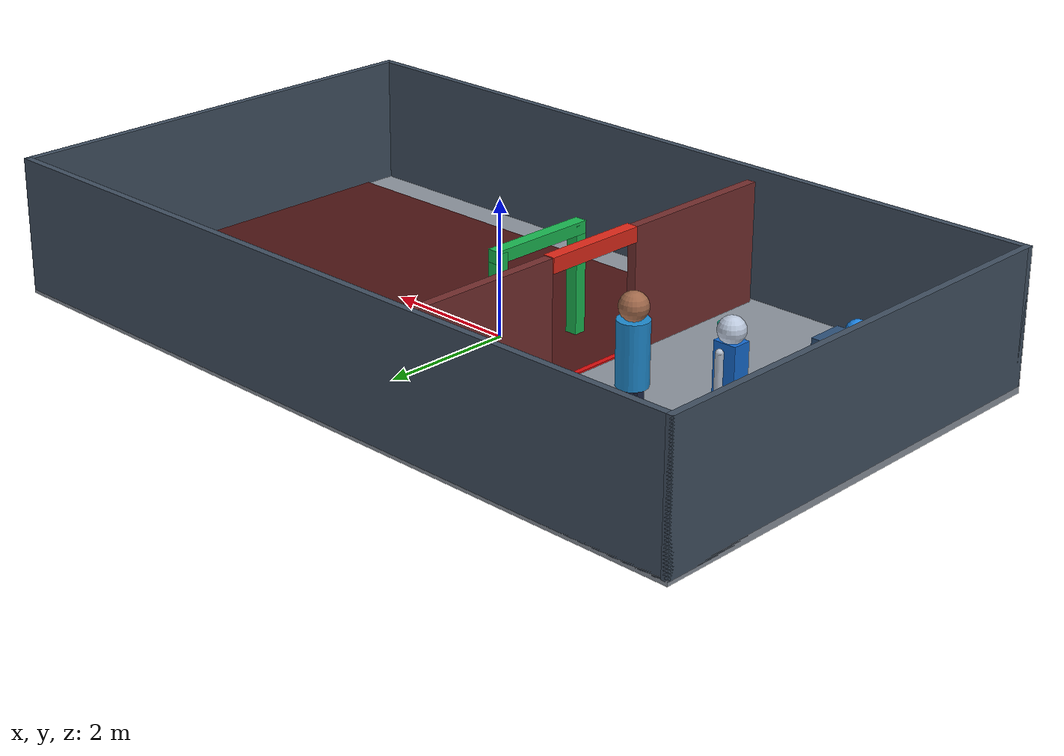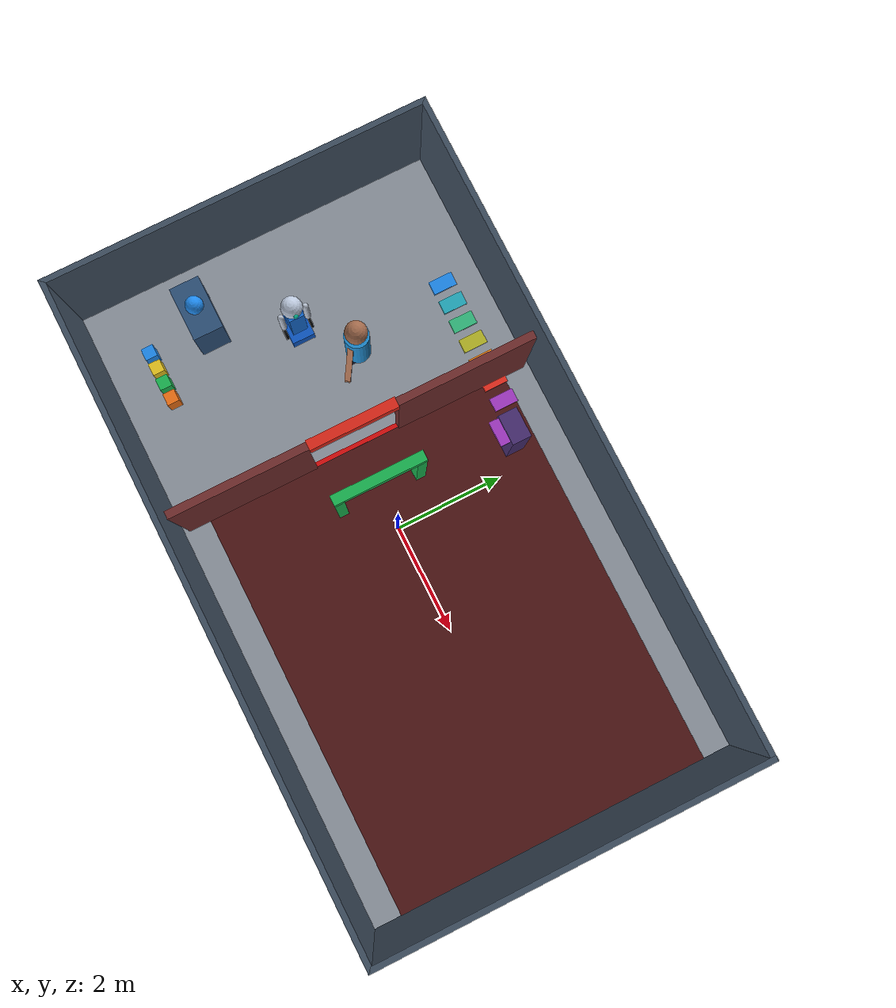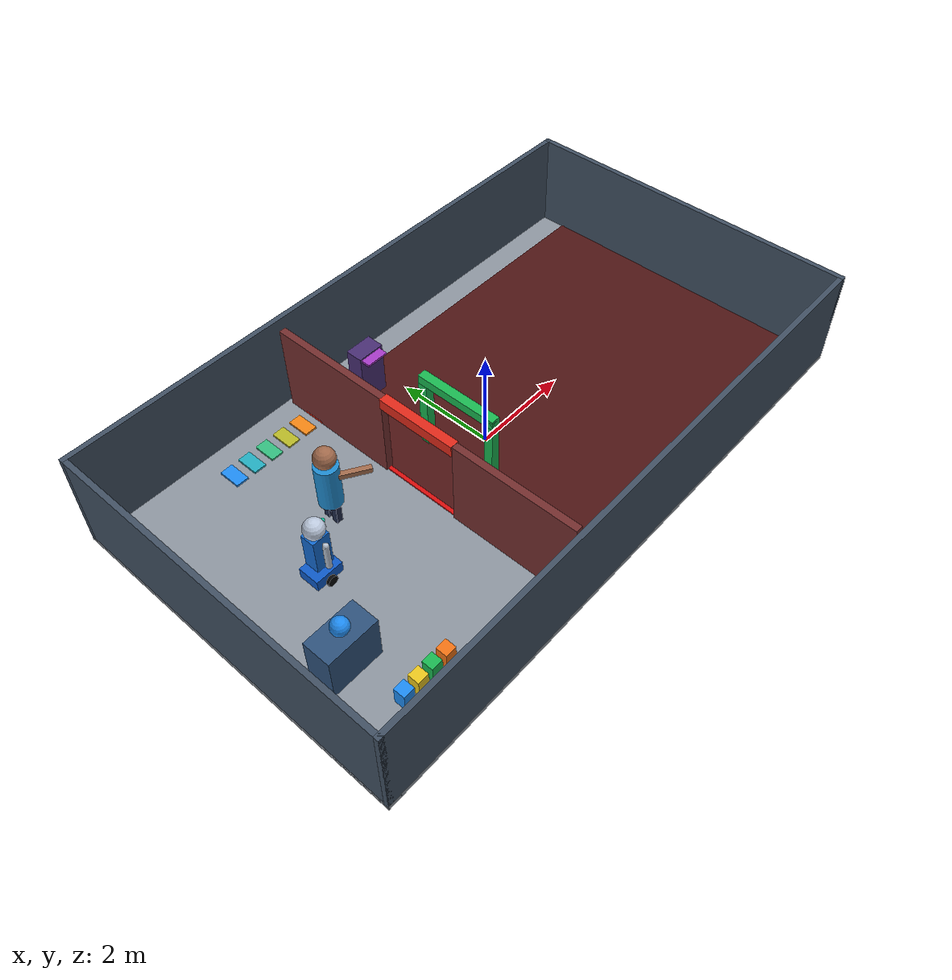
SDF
<?xml version="1.0"?>
<sdf version="1.9">
  <world name="dynamic_consent_world">
    <plugin filename="gz-sim-physics-system" name="gz::sim::systems::Physics"/>
    <plugin filename="gz-sim-user-commands-system" name="gz::sim::systems::UserCommands"/>
    <plugin filename="gz-sim-scene-broadcaster-system" name="gz::sim::systems::SceneBroadcaster"/>
    <!-- A logical camera avoids GPU rendering in OpenGL-limited UTM guests. -->
    <plugin filename="gz-sim-logical-camera-system" name="gz::sim::systems::LogicalCamera"/>

    <gui fullscreen="0">
      <plugin filename="MinimalScene" name="Assistance study view">
        <gz-gui>
          <title>Assistance study view</title>
          <property type="bool" key="showTitleBar">false</property>
          <property type="string" key="state">docked</property>
        </gz-gui>
        <scene>scene</scene>
        <ambient_light>0.7 0.7 0.7</ambient_light>
        <background_color>0.12 0.15 0.20</background_color>
        <camera_pose>-6.5 -6.5 6.5 0 0.55 0.78</camera_pose>
        <camera_clip><near>0.1</near><far>100</far></camera_clip>
      </plugin>
      <plugin filename="GzSceneManager" name="Scene Manager"/>
      <plugin filename="WorldControl" name="World control">
        <gz-gui>
          <property type="bool" key="showTitleBar">false</property>
          <property type="bool" key="resizable">false</property>
          <property type="double" key="height">72</property>
          <property type="double" key="width">121</property>
          <property type="string" key="state">floating</property>
          <anchors target="Assistance study view">
            <line own="left" target="left"/>
            <line own="bottom" target="bottom"/>
          </anchors>
        </gz-gui>
        <play_pause>true</play_pause><step>true</step>
        <start_paused>false</start_paused>
        <service>/world/dynamic_consent_world/control</service>
        <stats_topic>/world/dynamic_consent_world/stats</stats_topic>
      </plugin>
      <plugin filename="EntityTree" name="Study entities"/>
    </gui>

    <gravity>0 0 -9.8</gravity>
    <scene>
      <ambient>0.7 0.7 0.7 1</ambient>
      <background>0.12 0.15 0.20 1</background>
    </scene>
    <light name="ceiling_light" type="directional">
      <cast_shadows>true</cast_shadows>
      <pose>0 0 8 0 0 0</pose>
      <diffuse>0.9 0.9 0.9 1</diffuse>
      <specular>0.2 0.2 0.2 1</specular>
      <direction>-0.25 0.15 -1</direction>
    </light>

    <model name="building_floor">
      <static>true</static>
      <link name="floor_link">
        <collision name="floor_collision">
          <geometry><box><size>12 7 0.1</size></box></geometry>
        </collision>
        <visual name="floor_visual">
          <geometry><box><size>12 7 0.1</size></box></geometry>
          <material><ambient>0.55 0.58 0.62 1</ambient><diffuse>0.55 0.58 0.62 1</diffuse></material>
        </visual>
      </link>
    </model>

    <model name="north_wall">
      <static>true</static><pose>0 3.45 1 0 0 0</pose>
      <link name="wall"><collision name="collision"><geometry><box><size>12 0.1 2</size></box></geometry></collision><visual name="visual"><geometry><box><size>12 0.1 2</size></box></geometry><material><ambient>0.25 0.31 0.38 1</ambient><diffuse>0.25 0.31 0.38 1</diffuse></material></visual></link>
    </model>
    <model name="south_wall">
      <static>true</static><pose>0 -3.45 1 0 0 0</pose>
      <link name="wall"><collision name="collision"><geometry><box><size>12 0.1 2</size></box></geometry></collision><visual name="visual"><geometry><box><size>12 0.1 2</size></box></geometry><material><ambient>0.25 0.31 0.38 1</ambient><diffuse>0.25 0.31 0.38 1</diffuse></material></visual></link>
    </model>
    <model name="west_wall">
      <static>true</static><pose>-5.95 0 1 0 0 0</pose>
      <link name="wall"><collision name="collision"><geometry><box><size>0.1 7 2</size></box></geometry></collision><visual name="visual"><geometry><box><size>0.1 7 2</size></box></geometry><material><ambient>0.25 0.31 0.38 1</ambient><diffuse>0.25 0.31 0.38 1</diffuse></material></visual></link>
    </model>
    <model name="east_wall">
      <static>true</static><pose>5.95 0 1 0 0 0</pose>
      <link name="wall"><collision name="collision"><geometry><box><size>0.1 7 2</size></box></geometry></collision><visual name="visual"><geometry><box><size>0.1 7 2</size></box></geometry><material><ambient>0.25 0.31 0.38 1</ambient><diffuse>0.25 0.31 0.38 1</diffuse></material></visual></link>
    </model>

    <!-- The robot stops west of this line when private-space access is refused. -->
    <model name="privacy_boundary">
      <static>true</static><pose>-1.65 0 0.065 0 0 0</pose>
      <link name="boundary_link">
        <visual name="boundary_visual">
          <geometry><box><size>0.08 5.8 0.025</size></box></geometry>
          <material><ambient>0.85 0.05 0.05 1</ambient><diffuse>0.85 0.05 0.05 1</diffuse><emissive>0.3 0 0 1</emissive></material>
        </visual>
      </link>
    </model>
    <model name="restricted_private_area">
      <static>true</static><pose>2.125 0 0.061 0 0 0</pose>
      <link name="area_link"><visual name="area_visual"><geometry><box><size>7.55 5.8 0.012</size></box></geometry><material><ambient>0.30 0.08 0.08 1</ambient><diffuse>0.30 0.08 0.08 1</diffuse></material></visual></link>
    </model>

    <!-- A stylised visitor makes the assistance relationship explicit. -->
    <model name="visitor_requesting_assistance">
      <static>true</static><pose>-3.05 0.75 0.05 0 0 0</pose>
      <link name="visitor">
        <visual name="left_leg"><pose>0 0.10 0.23 0 0 0</pose><geometry><box><size>0.12 0.12 0.46</size></box></geometry><material><ambient>0.12 0.16 0.28 1</ambient><diffuse>0.12 0.16 0.28 1</diffuse></material></visual>
        <visual name="right_leg"><pose>0 -0.10 0.23 0 0 0</pose><geometry><box><size>0.12 0.12 0.46</size></box></geometry><material><ambient>0.12 0.16 0.28 1</ambient><diffuse>0.12 0.16 0.28 1</diffuse></material></visual>
        <visual name="torso"><pose>0 0 0.90 0 0 0</pose><geometry><cylinder><radius>0.22</radius><length>0.90</length></cylinder></geometry><material><ambient>0.12 0.55 0.82 1</ambient><diffuse>0.12 0.55 0.82 1</diffuse></material></visual>
        <visual name="head"><pose>0 0 1.52 0 0 0</pose><geometry><sphere><radius>0.20</radius></sphere></geometry><material><ambient>0.64 0.42 0.30 1</ambient><diffuse>0.64 0.42 0.30 1</diffuse></material></visual>
        <visual name="pointing_arm"><pose>0.28 -0.28 1.12 0 0 -0.55</pose><geometry><box><size>0.70 0.10 0.10</size></box></geometry><material><ambient>0.64 0.42 0.30 1</ambient><diffuse>0.64 0.42 0.30 1</diffuse></material></visual>
      </link>
    </model>

    <model name="reception_start_point">
      <static>true</static><pose>-4.85 -1.45 0.05 0 0 0</pose>
      <link name="desk">
        <collision name="collision"><pose>0 0 0.45 0 0 0</pose><geometry><box><size>1.0 0.55 0.9</size></box></geometry></collision>
        <visual name="desk_visual"><pose>0 0 0.45 0 0 0</pose><geometry><box><size>1.0 0.55 0.9</size></box></geometry><material><ambient>0.18 0.32 0.48 1</ambient><diffuse>0.18 0.32 0.48 1</diffuse></material></visual>
        <visual name="reception_beacon"><pose>0 0 1.05 0 0 0</pose><geometry><sphere><radius>0.16</radius></sphere></geometry><material><ambient>0.12 0.55 0.95 1</ambient><diffuse>0.12 0.55 0.95 1</diffuse><emissive>0.05 0.2 0.35 1</emissive></material></visual>
      </link>
    </model>

    <!-- The red region is now a room with a wide doorway at the boundary. -->
    <model name="private_room_entrance">
      <static>true</static><pose>-1.65 0 0.05 0 0 0</pose>
      <link name="doorway">
        <collision name="north_partition_collision"><pose>0 2.05 0.9 0 0 0</pose><geometry><box><size>0.14 2.5 1.8</size></box></geometry></collision>
        <collision name="south_partition_collision"><pose>0 -2.05 0.9 0 0 0</pose><geometry><box><size>0.14 2.5 1.8</size></box></geometry></collision>
        <visual name="north_partition"><pose>0 2.05 0.9 0 0 0</pose><geometry><box><size>0.14 2.5 1.8</size></box></geometry><material><ambient>0.45 0.18 0.18 1</ambient><diffuse>0.45 0.18 0.18 1</diffuse></material></visual>
        <visual name="south_partition"><pose>0 -2.05 0.9 0 0 0</pose><geometry><box><size>0.14 2.5 1.8</size></box></geometry><material><ambient>0.45 0.18 0.18 1</ambient><diffuse>0.45 0.18 0.18 1</diffuse></material></visual>
        <visual name="door_lintel"><pose>0 0 1.7 0 0 0</pose><geometry><box><size>0.18 1.6 0.22</size></box></geometry><material><ambient>0.88 0.16 0.10 1</ambient><diffuse>0.88 0.16 0.10 1</diffuse></material></visual>
      </link>
    </model>

    <model name="assistance_destination">
      <static>true</static><pose>-0.70 0 0.05 0 0 0</pose>
      <link name="destination_arch">
        <visual name="left_post"><pose>0 0.75 0.8 0 0 0</pose><geometry><box><size>0.18 0.18 1.6</size></box></geometry><material><ambient>0.10 0.72 0.32 1</ambient><diffuse>0.10 0.72 0.32 1</diffuse></material></visual>
        <visual name="right_post"><pose>0 -0.75 0.8 0 0 0</pose><geometry><box><size>0.18 0.18 1.6</size></box></geometry><material><ambient>0.10 0.72 0.32 1</ambient><diffuse>0.10 0.72 0.32 1</diffuse></material></visual>
        <visual name="top"><pose>0 0 1.55 0 0 0</pose><geometry><box><size>0.18 1.68 0.18</size></box></geometry><material><ambient>0.10 0.72 0.32 1</ambient><diffuse>0.10 0.72 0.32 1</diffuse><emissive>0.03 0.22 0.08 1</emissive></material></visual>
      </link>
    </model>

    <model name="authorised_staff_assistance_station">
      <static>true</static><pose>-0.55 2.45 0.05 0 0 0</pose>
      <link name="station">
        <visual name="stand"><pose>0 0 0.55 0 0 0</pose><geometry><box><size>0.55 0.35 1.1</size></box></geometry><material><ambient>0.28 0.18 0.45 1</ambient><diffuse>0.28 0.18 0.45 1</diffuse></material></visual>
        <visual name="screen"><pose>-0.02 -0.19 1.05 1.5708 0 0</pose><geometry><box><size>0.45 0.04 0.34</size></box></geometry><material><ambient>0.65 0.23 0.78 1</ambient><diffuse>0.65 0.23 0.78 1</diffuse><emissive>0.20 0.06 0.28 1</emissive></material></visual>
      </link>
    </model>

    <!-- A fixed colour key matches the terminal study dashboard. -->
    <model name="status_indicator_legend">
      <static>true</static><pose>-4.7 -2.55 0.05 0 0 0</pose>
      <link name="legend">
        <visual name="ready_blue"><pose>0 0 0.18 0 0 0</pose><geometry><box><size>0.22 0.22 0.36</size></box></geometry><material><ambient>0.12 0.55 0.95 1</ambient><diffuse>0.12 0.55 0.95 1</diffuse></material></visual>
        <visual name="waiting_yellow"><pose>0.30 0 0.18 0 0 0</pose><geometry><box><size>0.22 0.22 0.36</size></box></geometry><material><ambient>0.92 0.78 0.12 1</ambient><diffuse>0.92 0.78 0.12 1</diffuse></material></visual>
        <visual name="granted_green"><pose>0.60 0 0.18 0 0 0</pose><geometry><box><size>0.22 0.22 0.36</size></box></geometry><material><ambient>0.10 0.72 0.32 1</ambient><diffuse>0.10 0.72 0.32 1</diffuse></material></visual>
        <visual name="fallback_orange"><pose>0.90 0 0.18 0 0 0</pose><geometry><box><size>0.22 0.22 0.36</size></box></geometry><material><ambient>0.95 0.45 0.08 1</ambient><diffuse>0.95 0.45 0.08 1</diffuse></material></visual>
      </link>
    </model>

    <!-- Seven coloured pads make the deterministic study stages visible. -->
    <model name="stage_1_person_recognition"><static>true</static><pose>-3.6 2.7 0.08 0 0 0</pose><link name="pad"><visual name="visual"><geometry><box><size>0.25 0.45 0.04</size></box></geometry><material><ambient>0.12 0.55 0.95 1</ambient><diffuse>0.12 0.55 0.95 1</diffuse></material></visual></link></model>
    <model name="stage_2_speech_input"><static>true</static><pose>-3.2 2.7 0.08 0 0 0</pose><link name="pad"><visual name="visual"><geometry><box><size>0.25 0.45 0.04</size></box></geometry><material><ambient>0.14 0.68 0.75 1</ambient><diffuse>0.14 0.68 0.75 1</diffuse></material></visual></link></model>
    <model name="stage_3_interaction_memory"><static>true</static><pose>-2.8 2.7 0.08 0 0 0</pose><link name="pad"><visual name="visual"><geometry><box><size>0.25 0.45 0.04</size></box></geometry><material><ambient>0.20 0.74 0.50 1</ambient><diffuse>0.20 0.74 0.50 1</diffuse></material></visual></link></model>
    <model name="stage_4_body_pose_tracking"><static>true</static><pose>-2.4 2.7 0.08 0 0 0</pose><link name="pad"><visual name="visual"><geometry><box><size>0.25 0.45 0.04</size></box></geometry><material><ambient>0.72 0.72 0.15 1</ambient><diffuse>0.72 0.72 0.15 1</diffuse></material></visual></link></model>
    <model name="stage_5_route_guidance"><static>true</static><pose>-2.0 2.7 0.08 0 0 0</pose><link name="pad"><visual name="visual"><geometry><box><size>0.25 0.45 0.04</size></box></geometry><material><ambient>0.95 0.52 0.08 1</ambient><diffuse>0.95 0.52 0.08 1</diffuse></material></visual></link></model>
    <model name="stage_6_proximity_or_private_space_access"><static>true</static><pose>-1.6 2.7 0.08 0 0 0</pose><link name="pad"><visual name="visual"><geometry><box><size>0.25 0.45 0.04</size></box></geometry><material><ambient>0.92 0.18 0.12 1</ambient><diffuse>0.92 0.18 0.12 1</diffuse></material></visual></link></model>
    <model name="stage_7_remote_assistance_stream"><static>true</static><pose>-1.2 2.7 0.08 0 0 0</pose><link name="pad"><visual name="visual"><geometry><box><size>0.25 0.45 0.04</size></box></geometry><material><ambient>0.65 0.23 0.78 1</ambient><diffuse>0.65 0.23 0.78 1</diffuse></material></visual></link></model>

    <model name="consent_robot">
      <pose>-4.0 0 0.23 0 0 0</pose>
      <link name="base_link">
        <inertial><mass>6.0</mass><inertia><ixx>0.18</ixx><iyy>0.28</iyy><izz>0.35</izz><ixy>0</ixy><ixz>0</ixz><iyz>0</iyz></inertia></inertial>
        <collision name="base_collision"><geometry><box><size>0.55 0.42 0.22</size></box></geometry></collision>
        <visual name="base_visual"><geometry><box><size>0.55 0.42 0.22</size></box></geometry><material><ambient>0.05 0.35 0.78 1</ambient><diffuse>0.05 0.35 0.78 1</diffuse></material></visual>
        <visual name="consent_indicator"><pose>0 0 0.20 0 0 0</pose><geometry><sphere><radius>0.09</radius></sphere></geometry><material><ambient>0.10 0.90 0.55 1</ambient><diffuse>0.10 0.90 0.55 1</diffuse><emissive>0.03 0.25 0.10 1</emissive></material></visual>
      </link>
      <!-- Humanoid upper body mounted on a stable differential-drive base. -->
      <link name="torso_link">
        <pose relative_to="base_link">0 0 0.58 0 0 0</pose>
        <inertial><mass>1.0</mass><inertia><ixx>0.03</ixx><iyy>0.03</iyy><izz>0.03</izz><ixy>0</ixy><ixz>0</ixz><iyz>0</iyz></inertia></inertial>
        <visual name="torso_visual"><geometry><box><size>0.34 0.28 0.72</size></box></geometry><material><ambient>0.08 0.42 0.82 1</ambient><diffuse>0.08 0.42 0.82 1</diffuse></material></visual>
        <visual name="left_arm"><pose>0 0.23 0 0 0 0</pose><geometry><capsule><radius>0.055</radius><length>0.52</length></capsule></geometry><material><ambient>0.72 0.76 0.82 1</ambient><diffuse>0.72 0.76 0.82 1</diffuse></material></visual>
        <visual name="right_arm"><pose>0 -0.23 0 0 0 0</pose><geometry><capsule><radius>0.055</radius><length>0.52</length></capsule></geometry><material><ambient>0.72 0.76 0.82 1</ambient><diffuse>0.72 0.76 0.82 1</diffuse></material></visual>
      </link>
      <link name="sensor_head">
        <pose relative_to="base_link">0 0 1.08 0 0 0</pose>
        <inertial><mass>0.5</mass><inertia><ixx>0.008</ixx><iyy>0.008</iyy><izz>0.008</izz><ixy>0</ixy><ixz>0</ixz><iyz>0</iyz></inertia></inertial>
        <visual name="head_visual"><geometry><sphere><radius>0.19</radius></sphere></geometry><material><ambient>0.75 0.80 0.88 1</ambient><diffuse>0.75 0.80 0.88 1</diffuse></material></visual>
        <visual name="camera_eye"><pose>0.18 0 0.03 0 0 0</pose><geometry><sphere><radius>0.045</radius></sphere></geometry><material><ambient>0.05 0.80 0.65 1</ambient><diffuse>0.05 0.80 0.65 1</diffuse><emissive>0.02 0.25 0.18 1</emissive></material></visual>
        <sensor name="privacy_logical_camera" type="logical_camera">
          <pose>0.18 0 0.03 0 0 0</pose>
          <always_on>true</always_on>
          <update_rate>5</update_rate>
          <visualize>false</visualize>
          <topic>/sensors/logical_camera/raw</topic>
          <logical_camera>
            <near>0.20</near>
            <far>4.0</far>
            <horizontal_fov>1.60</horizontal_fov>
            <aspect_ratio>1.50</aspect_ratio>
          </logical_camera>
        </sensor>
      </link>
      <link name="left_wheel">
        <pose relative_to="base_link">0 0.24 -0.08 1.5708 0 0</pose>
        <inertial><mass>0.3</mass><inertia><ixx>0.001</ixx><iyy>0.001</iyy><izz>0.001</izz><ixy>0</ixy><ixz>0</ixz><iyz>0</iyz></inertia></inertial>
        <collision name="collision"><geometry><cylinder><radius>0.1</radius><length>0.06</length></cylinder></geometry></collision>
        <visual name="visual"><geometry><cylinder><radius>0.1</radius><length>0.06</length></cylinder></geometry><material><ambient>0.03 0.03 0.03 1</ambient><diffuse>0.03 0.03 0.03 1</diffuse></material></visual>
      </link>
      <link name="right_wheel">
        <pose relative_to="base_link">0 -0.24 -0.08 1.5708 0 0</pose>
        <inertial><mass>0.3</mass><inertia><ixx>0.001</ixx><iyy>0.001</iyy><izz>0.001</izz><ixy>0</ixy><ixz>0</ixz><iyz>0</iyz></inertia></inertial>
        <collision name="collision"><geometry><cylinder><radius>0.1</radius><length>0.06</length></cylinder></geometry></collision>
        <visual name="visual"><geometry><cylinder><radius>0.1</radius><length>0.06</length></cylinder></geometry><material><ambient>0.03 0.03 0.03 1</ambient><diffuse>0.03 0.03 0.03 1</diffuse></material></visual>
      </link>
      <joint name="left_wheel_joint" type="revolute"><parent>base_link</parent><child>left_wheel</child><axis><xyz expressed_in="__model__">0 1 0</xyz></axis></joint>
      <joint name="right_wheel_joint" type="revolute"><parent>base_link</parent><child>right_wheel</child><axis><xyz expressed_in="__model__">0 1 0</xyz></axis></joint>
      <joint name="torso_joint" type="fixed"><parent>base_link</parent><child>torso_link</child></joint>
      <joint name="head_joint" type="fixed"><parent>base_link</parent><child>sensor_head</child></joint>
      <plugin filename="gz-sim-diff-drive-system" name="gz::sim::systems::DiffDrive">
        <left_joint>left_wheel_joint</left_joint>
        <right_joint>right_wheel_joint</right_joint>
        <wheel_separation>0.48</wheel_separation>
        <wheel_radius>0.10</wheel_radius>
        <topic>/model/consent_robot/cmd_vel</topic>
        <odom_topic>/model/consent_robot/odometry</odom_topic>
      </plugin>
    </model>
  </world>
</sdf>
